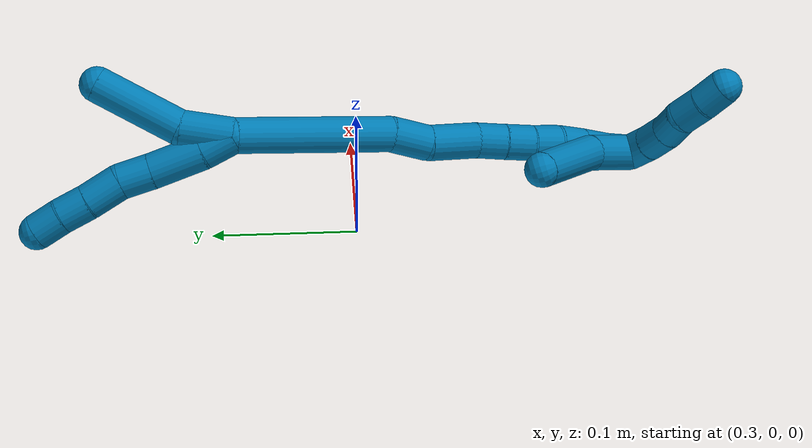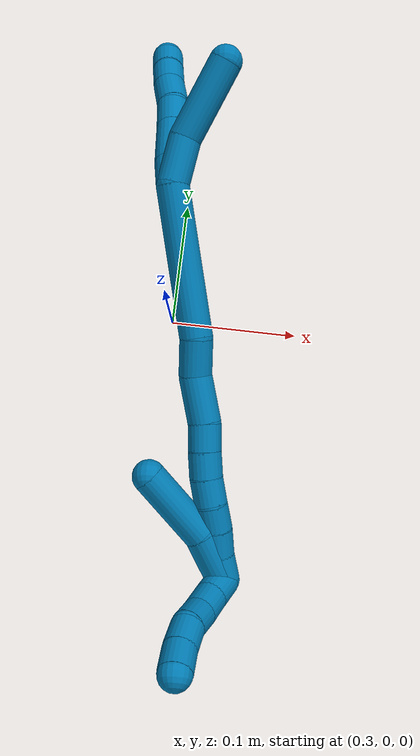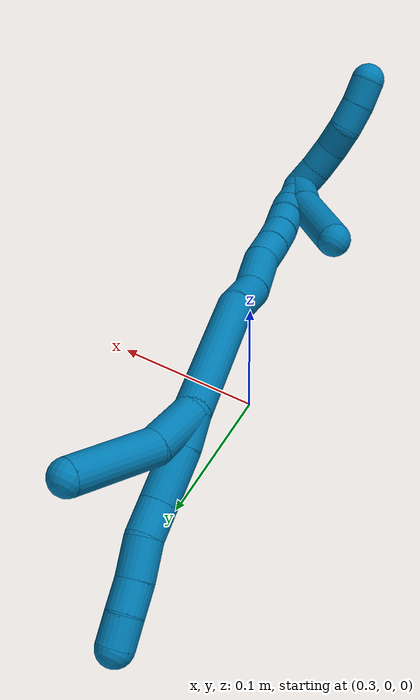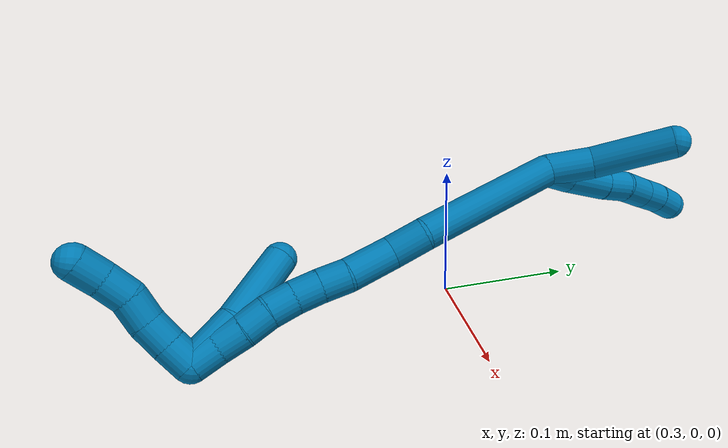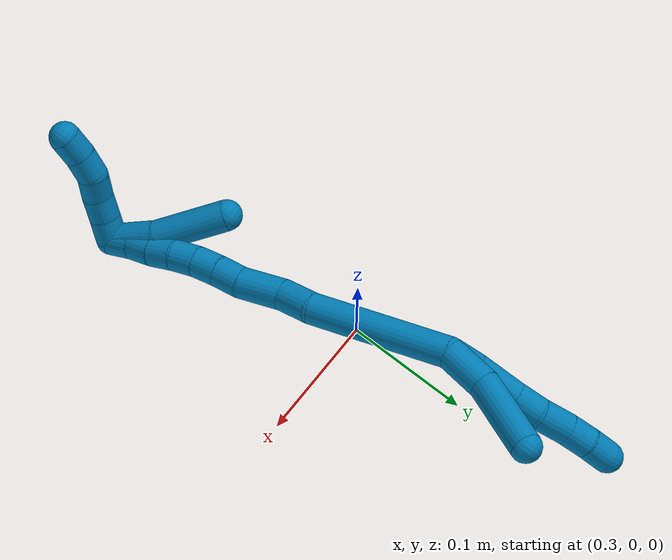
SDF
<sdf version="1.7">
 <world name="default">
  <model name="9">
   <static>0</static>
   <link name="9">
    <collision name="collision-cylinder-e_1_2_8">
     <pose>3.6e-05 -0.002047 0.011407 0.177545 0.003089 0.000275</pose>
     <geometry><cylinder><radius>0.0125</radius><length>0.023178</length></cylinder></geometry>
     <surface>
      <friction><ode><mu>1.16</mu><mu2>1.16</mu2><slip1>0</slip1><slip2>0</slip2></ode></friction>
      <contact><ode><kp>1e+06</kp><kd>1</kd><max_vel>0</max_vel><min_depth>0.001</min_depth></ode></contact>
     </surface>
    </collision>
    <visual name="visual-cylinder-e_1_2_8">
     <pose>3.6e-05 -0.002047 0.011407 0.177545 0.003089 0.000275</pose>
     <geometry><cylinder><radius>0.0125</radius><length>0.023178</length></cylinder></geometry>
     <material><ambient>0 0.490196 0.709804 1</ambient></material>
    </visual>
    <collision name="collision-cylinder-e_2_8_9">
     <pose>0.000249 -0.005083 0.041526 0.052804 0.009472 0.00025</pose>
     <geometry><cylinder><radius>0.0125</radius><length>0.037479</length></cylinder></geometry>
     <surface>
      <friction><ode><mu>1.16</mu><mu2>1.16</mu2><slip1>0</slip1><slip2>0</slip2></ode></friction>
      <contact><ode><kp>1e+06</kp><kd>1</kd><max_vel>0</max_vel><min_depth>0.001</min_depth></ode></contact>
     </surface>
    </collision>
    <visual name="visual-cylinder-e_2_8_9">
     <pose>0.000249 -0.005083 0.041526 0.052804 0.009472 0.00025</pose>
     <geometry><cylinder><radius>0.0125</radius><length>0.037479</length></cylinder></geometry>
     <material><ambient>0 0.490196 0.709804 1</ambient></material>
    </visual>
    <collision name="collision-cylinder-e_3_9_10">
     <pose>0.001416 -0.006303 0.071536 0.020457 0.087305 0.000894</pose>
     <geometry><cylinder><radius>0.0125</radius><length>0.022685</length></cylinder></geometry>
     <surface>
      <friction><ode><mu>1.16</mu><mu2>1.16</mu2><slip1>0</slip1><slip2>0</slip2></ode></friction>
      <contact><ode><kp>1e+06</kp><kd>1</kd><max_vel>0</max_vel><min_depth>0.001</min_depth></ode></contact>
     </surface>
    </collision>
    <visual name="visual-cylinder-e_3_9_10">
     <pose>0.001416 -0.006303 0.071536 0.020457 0.087305 0.000894</pose>
     <geometry><cylinder><radius>0.0125</radius><length>0.022685</length></cylinder></geometry>
     <material><ambient>0 0.490196 0.709804 1</ambient></material>
    </visual>
    <collision name="collision-cylinder-e_4_10_11">
     <pose>0.002566 -0.009783 0.095275 0.255479 0.012572 0.001615</pose>
     <geometry><cylinder><radius>0.0125</radius><length>0.025721</length></cylinder></geometry>
     <surface>
      <friction><ode><mu>1.16</mu><mu2>1.16</mu2><slip1>0</slip1><slip2>0</slip2></ode></friction>
      <contact><ode><kp>1e+06</kp><kd>1</kd><max_vel>0</max_vel><min_depth>0.001</min_depth></ode></contact>
     </surface>
    </collision>
    <visual name="visual-cylinder-e_4_10_11">
     <pose>0.002566 -0.009783 0.095275 0.255479 0.012572 0.001615</pose>
     <geometry><cylinder><radius>0.0125</radius><length>0.025721</length></cylinder></geometry>
     <material><ambient>0 0.490196 0.709804 1</ambient></material>
    </visual>
    <collision name="collision-cylinder-e_5_11_12">
     <pose>0.00259 -0.01482 0.117861 0.174359 -0.013375 -0.001169</pose>
     <geometry><cylinder><radius>0.0125</radius><length>0.020604</length></cylinder></geometry>
     <surface>
      <friction><ode><mu>1.16</mu><mu2>1.16</mu2><slip1>0</slip1><slip2>0</slip2></ode></friction>
      <contact><ode><kp>1e+06</kp><kd>1</kd><max_vel>0</max_vel><min_depth>0.001</min_depth></ode></contact>
     </surface>
    </collision>
    <visual name="visual-cylinder-e_5_11_12">
     <pose>0.00259 -0.01482 0.117861 0.174359 -0.013375 -0.001169</pose>
     <geometry><cylinder><radius>0.0125</radius><length>0.020604</length></cylinder></geometry>
     <material><ambient>0 0.490196 0.709804 1</ambient></material>
    </visual>
    <collision name="collision-cylinder-e_6_12_6">
     <pose>0.001345 -0.018929 0.137842 0.231821 -0.109128 -0.012719</pose>
     <geometry><cylinder><radius>0.0125</radius><length>0.020333</length></cylinder></geometry>
     <surface>
      <friction><ode><mu>1.16</mu><mu2>1.16</mu2><slip1>0</slip1><slip2>0</slip2></ode></friction>
      <contact><ode><kp>1e+06</kp><kd>1</kd><max_vel>0</max_vel><min_depth>0.001</min_depth></ode></contact>
     </surface>
    </collision>
    <visual name="visual-cylinder-e_6_12_6">
     <pose>0.001345 -0.018929 0.137842 0.231821 -0.109128 -0.012719</pose>
     <geometry><cylinder><radius>0.0125</radius><length>0.020333</length></cylinder></geometry>
     <material><ambient>0 0.490196 0.709804 1</ambient></material>
    </visual>
    <collision name="collision-cylinder-e_1_2_13">
     <pose>0.003447 0.007492 0.016158 -0.434153 0.191188 -0.04229</pose>
     <geometry><cylinder><radius>0.0125</radius><length>0.036281</length></cylinder></geometry>
     <surface>
      <friction><ode><mu>1.16</mu><mu2>1.16</mu2><slip1>0</slip1><slip2>0</slip2></ode></friction>
      <contact><ode><kp>1e+06</kp><kd>1</kd><max_vel>0</max_vel><min_depth>0.001</min_depth></ode></contact>
     </surface>
    </collision>
    <visual name="visual-cylinder-e_1_2_13">
     <pose>0.003447 0.007492 0.016158 -0.434153 0.191188 -0.04229</pose>
     <geometry><cylinder><radius>0.0125</radius><length>0.036281</length></cylinder></geometry>
     <material><ambient>0 0.490196 0.709804 1</ambient></material>
    </visual>
    <collision name="collision-cylinder-e_2_13_5">
     <pose>0.011637 0.03717 0.054682 -0.781363 0.149414 -0.061632</pose>
     <geometry><cylinder><radius>0.0125</radius><length>0.063719</length></cylinder></geometry>
     <surface>
      <friction><ode><mu>1.16</mu><mu2>1.16</mu2><slip1>0</slip1><slip2>0</slip2></ode></friction>
      <contact><ode><kp>1e+06</kp><kd>1</kd><max_vel>0</max_vel><min_depth>0.001</min_depth></ode></contact>
     </surface>
    </collision>
    <visual name="visual-cylinder-e_2_13_5">
     <pose>0.011637 0.03717 0.054682 -0.781363 0.149414 -0.061632</pose>
     <geometry><cylinder><radius>0.0125</radius><length>0.063719</length></cylinder></geometry>
     <material><ambient>0 0.490196 0.709804 1</ambient></material>
    </visual>
    <collision name="collision-cylinder-e_1_2_14">
     <pose>-0.029735 -0.009884 -0.048203 2.93935 -0.543571 -2.44325</pose>
     <geometry><cylinder><radius>0.0125</radius><length>0.114985</length></cylinder></geometry>
     <surface>
      <friction><ode><mu>1.16</mu><mu2>1.16</mu2><slip1>0</slip1><slip2>0</slip2></ode></friction>
      <contact><ode><kp>1e+06</kp><kd>1</kd><max_vel>0</max_vel><min_depth>0.001</min_depth></ode></contact>
     </surface>
    </collision>
    <visual name="visual-cylinder-e_1_2_14">
     <pose>-0.029735 -0.009884 -0.048203 2.93935 -0.543571 -2.44325</pose>
     <geometry><cylinder><radius>0.0125</radius><length>0.114985</length></cylinder></geometry>
     <material><ambient>0 0.490196 0.709804 1</ambient></material>
    </visual>
    <collision name="collision-cylinder-e_2_14_15">
     <pose>-0.066513 -0.025383 -0.107186 2.66129 -0.525192 -1.66389</pose>
     <geometry><cylinder><radius>0.0125</radius><length>0.028097</length></cylinder></geometry>
     <surface>
      <friction><ode><mu>1.16</mu><mu2>1.16</mu2><slip1>0</slip1><slip2>0</slip2></ode></friction>
      <contact><ode><kp>1e+06</kp><kd>1</kd><max_vel>0</max_vel><min_depth>0.001</min_depth></ode></contact>
     </surface>
    </collision>
    <visual name="visual-cylinder-e_2_14_15">
     <pose>-0.066513 -0.025383 -0.107186 2.66129 -0.525192 -1.66389</pose>
     <geometry><cylinder><radius>0.0125</radius><length>0.028097</length></cylinder></geometry>
     <material><ambient>0 0.490196 0.709804 1</ambient></material>
    </visual>
    <collision name="collision-cylinder-e_3_15_16">
     <pose>-0.083018 -0.03329 -0.133237 2.99269 -0.549726 -2.62444</pose>
     <geometry><cylinder><radius>0.0125</radius><length>0.036219</length></cylinder></geometry>
     <surface>
      <friction><ode><mu>1.16</mu><mu2>1.16</mu2><slip1>0</slip1><slip2>0</slip2></ode></friction>
      <contact><ode><kp>1e+06</kp><kd>1</kd><max_vel>0</max_vel><min_depth>0.001</min_depth></ode></contact>
     </surface>
    </collision>
    <visual name="visual-cylinder-e_3_15_16">
     <pose>-0.083018 -0.03329 -0.133237 2.99269 -0.549726 -2.62444</pose>
     <geometry><cylinder><radius>0.0125</radius><length>0.036219</length></cylinder></geometry>
     <material><ambient>0 0.490196 0.709804 1</ambient></material>
    </visual>
    <collision name="collision-cylinder-e_4_16_17">
     <pose>-0.096643 -0.038364 -0.157552 2.8431 -0.414455 -1.8999</pose>
     <geometry><cylinder><radius>0.0125</radius><length>0.020678</length></cylinder></geometry>
     <surface>
      <friction><ode><mu>1.16</mu><mu2>1.16</mu2><slip1>0</slip1><slip2>0</slip2></ode></friction>
      <contact><ode><kp>1e+06</kp><kd>1</kd><max_vel>0</max_vel><min_depth>0.001</min_depth></ode></contact>
     </surface>
    </collision>
    <visual name="visual-cylinder-e_4_16_17">
     <pose>-0.096643 -0.038364 -0.157552 2.8431 -0.414455 -1.8999</pose>
     <geometry><cylinder><radius>0.0125</radius><length>0.020678</length></cylinder></geometry>
     <material><ambient>0 0.490196 0.709804 1</ambient></material>
    </visual>
    <collision name="collision-cylinder-e_5_17_18">
     <pose>-0.105361 -0.043574 -0.175164 2.86552 -0.472799 -2.09544</pose>
     <geometry><cylinder><radius>0.0125</radius><length>0.020001</length></cylinder></geometry>
     <surface>
      <friction><ode><mu>1.16</mu><mu2>1.16</mu2><slip1>0</slip1><slip2>0</slip2></ode></friction>
      <contact><ode><kp>1e+06</kp><kd>1</kd><max_vel>0</max_vel><min_depth>0.001</min_depth></ode></contact>
     </surface>
    </collision>
    <visual name="visual-cylinder-e_5_17_18">
     <pose>-0.105361 -0.043574 -0.175164 2.86552 -0.472799 -2.09544</pose>
     <geometry><cylinder><radius>0.0125</radius><length>0.020001</length></cylinder></geometry>
     <material><ambient>0 0.490196 0.709804 1</ambient></material>
    </visual>
    <collision name="collision-cylinder-e_6_18_19">
     <pose>-0.115344 -0.047662 -0.191974 2.94275 -0.573323 -2.48899</pose>
     <geometry><cylinder><radius>0.0125</radius><length>0.020019</length></cylinder></geometry>
     <surface>
      <friction><ode><mu>1.16</mu><mu2>1.16</mu2><slip1>0</slip1><slip2>0</slip2></ode></friction>
      <contact><ode><kp>1e+06</kp><kd>1</kd><max_vel>0</max_vel><min_depth>0.001</min_depth></ode></contact>
     </surface>
    </collision>
    <visual name="visual-cylinder-e_6_18_19">
     <pose>-0.115344 -0.047662 -0.191974 2.94275 -0.573323 -2.48899</pose>
     <geometry><cylinder><radius>0.0125</radius><length>0.020019</length></cylinder></geometry>
     <material><ambient>0 0.490196 0.709804 1</ambient></material>
    </visual>
    <collision name="collision-cylinder-e_7_19_20">
     <pose>-0.127203 -0.051773 -0.207474 2.81597 -0.698323 -2.29393</pose>
     <geometry><cylinder><radius>0.0125</radius><length>0.02</length></cylinder></geometry>
     <surface>
      <friction><ode><mu>1.16</mu><mu2>1.16</mu2><slip1>0</slip1><slip2>0</slip2></ode></friction>
      <contact><ode><kp>1e+06</kp><kd>1</kd><max_vel>0</max_vel><min_depth>0.001</min_depth></ode></contact>
     </surface>
    </collision>
    <visual name="visual-cylinder-e_7_19_20">
     <pose>-0.127203 -0.051773 -0.207474 2.81597 -0.698323 -2.29393</pose>
     <geometry><cylinder><radius>0.0125</radius><length>0.02</length></cylinder></geometry>
     <material><ambient>0 0.490196 0.709804 1</ambient></material>
    </visual>
    <collision name="collision-cylinder-e_8_20_21">
     <pose>-0.139283 -0.057446 -0.222326 2.74031 -0.600442 -1.97911</pose>
     <geometry><cylinder><radius>0.0125</radius><length>0.02</length></cylinder></geometry>
     <surface>
      <friction><ode><mu>1.16</mu><mu2>1.16</mu2><slip1>0</slip1><slip2>0</slip2></ode></friction>
      <contact><ode><kp>1e+06</kp><kd>1</kd><max_vel>0</max_vel><min_depth>0.001</min_depth></ode></contact>
     </surface>
    </collision>
    <visual name="visual-cylinder-e_8_20_21">
     <pose>-0.139283 -0.057446 -0.222326 2.74031 -0.600442 -1.97911</pose>
     <geometry><cylinder><radius>0.0125</radius><length>0.02</length></cylinder></geometry>
     <material><ambient>0 0.490196 0.709804 1</ambient></material>
    </visual>
    <collision name="collision-cylinder-e_9_21_1">
     <pose>-0.151108 -0.062683 -0.237525 2.88263 -0.665545 -2.42101</pose>
     <geometry><cylinder><radius>0.0125</radius><length>0.02</length></cylinder></geometry>
     <surface>
      <friction><ode><mu>1.16</mu><mu2>1.16</mu2><slip1>0</slip1><slip2>0</slip2></ode></friction>
      <contact><ode><kp>1e+06</kp><kd>1</kd><max_vel>0</max_vel><min_depth>0.001</min_depth></ode></contact>
     </surface>
    </collision>
    <visual name="visual-cylinder-e_9_21_1">
     <pose>-0.151108 -0.062683 -0.237525 2.88263 -0.665545 -2.42101</pose>
     <geometry><cylinder><radius>0.0125</radius><length>0.02</length></cylinder></geometry>
     <material><ambient>0 0.490196 0.709804 1</ambient></material>
    </visual>
    <collision name="collision-cylinder-e_1_1_22">
     <pose>-0.141742 -0.063429 -0.232576 -0.100729 0.888841 -0.047998</pose>
     <geometry><cylinder><radius>0.0125</radius><length>0.040035</length></cylinder></geometry>
     <surface>
      <friction><ode><mu>1.16</mu><mu2>1.16</mu2><slip1>0</slip1><slip2>0</slip2></ode></friction>
      <contact><ode><kp>1e+06</kp><kd>1</kd><max_vel>0</max_vel><min_depth>0.001</min_depth></ode></contact>
     </surface>
    </collision>
    <visual name="visual-cylinder-e_1_1_22">
     <pose>-0.141742 -0.063429 -0.232576 -0.100729 0.888841 -0.047998</pose>
     <geometry><cylinder><radius>0.0125</radius><length>0.040035</length></cylinder></geometry>
     <material><ambient>0 0.490196 0.709804 1</ambient></material>
    </visual>
    <collision name="collision-cylinder-e_2_22_4">
     <pose>-0.101499 -0.067566 -0.203914 0.323779 0.968296 0.171356</pose>
     <geometry><cylinder><radius>0.0125</radius><length>0.059965</length></cylinder></geometry>
     <surface>
      <friction><ode><mu>1.16</mu><mu2>1.16</mu2><slip1>0</slip1><slip2>0</slip2></ode></friction>
      <contact><ode><kp>1e+06</kp><kd>1</kd><max_vel>0</max_vel><min_depth>0.001</min_depth></ode></contact>
     </surface>
    </collision>
    <visual name="visual-cylinder-e_2_22_4">
     <pose>-0.101499 -0.067566 -0.203914 0.323779 0.968296 0.171356</pose>
     <geometry><cylinder><radius>0.0125</radius><length>0.059965</length></cylinder></geometry>
     <material><ambient>0 0.490196 0.709804 1</ambient></material>
    </visual>
    <collision name="collision-cylinder-e_1_1_23">
     <pose>-0.150946 -0.064891 -0.252862 3.11654 0.68629 3.07149</pose>
     <geometry><cylinder><radius>0.0125</radius><length>0.02</length></cylinder></geometry>
     <surface>
      <friction><ode><mu>1.16</mu><mu2>1.16</mu2><slip1>0</slip1><slip2>0</slip2></ode></friction>
      <contact><ode><kp>1e+06</kp><kd>1</kd><max_vel>0</max_vel><min_depth>0.001</min_depth></ode></contact>
     </surface>
    </collision>
    <visual name="visual-cylinder-e_1_1_23">
     <pose>-0.150946 -0.064891 -0.252862 3.11654 0.68629 3.07149</pose>
     <geometry><cylinder><radius>0.0125</radius><length>0.02</length></cylinder></geometry>
     <material><ambient>0 0.490196 0.709804 1</ambient></material>
    </visual>
    <collision name="collision-cylinder-e_2_23_24">
     <pose>-0.138064 -0.064416 -0.268127 -3.05293 0.713573 -2.90468</pose>
     <geometry><cylinder><radius>0.0125</radius><length>0.02</length></cylinder></geometry>
     <surface>
      <friction><ode><mu>1.16</mu><mu2>1.16</mu2><slip1>0</slip1><slip2>0</slip2></ode></friction>
      <contact><ode><kp>1e+06</kp><kd>1</kd><max_vel>0</max_vel><min_depth>0.001</min_depth></ode></contact>
     </surface>
    </collision>
    <visual name="visual-cylinder-e_2_23_24">
     <pose>-0.138064 -0.064416 -0.268127 -3.05293 0.713573 -2.90468</pose>
     <geometry><cylinder><radius>0.0125</radius><length>0.02</length></cylinder></geometry>
     <material><ambient>0 0.490196 0.709804 1</ambient></material>
    </visual>
    <collision name="collision-cylinder-e_3_24_25">
     <pose>-0.124082 -0.06195 -0.282097 -2.86961 0.838486 -2.54578</pose>
     <geometry><cylinder><radius>0.0125</radius><length>0.02</length></cylinder></geometry>
     <surface>
      <friction><ode><mu>1.16</mu><mu2>1.16</mu2><slip1>0</slip1><slip2>0</slip2></ode></friction>
      <contact><ode><kp>1e+06</kp><kd>1</kd><max_vel>0</max_vel><min_depth>0.001</min_depth></ode></contact>
     </surface>
    </collision>
    <visual name="visual-cylinder-e_3_24_25">
     <pose>-0.124082 -0.06195 -0.282097 -2.86961 0.838486 -2.54578</pose>
     <geometry><cylinder><radius>0.0125</radius><length>0.02</length></cylinder></geometry>
     <material><ambient>0 0.490196 0.709804 1</ambient></material>
    </visual>
    <collision name="collision-cylinder-e_4_25_26">
     <pose>-0.111833 -0.058656 -0.297174 -2.96985 0.502129 -2.49395</pose>
     <geometry><cylinder><radius>0.0125</radius><length>0.02</length></cylinder></geometry>
     <surface>
      <friction><ode><mu>1.16</mu><mu2>1.16</mu2><slip1>0</slip1><slip2>0</slip2></ode></friction>
      <contact><ode><kp>1e+06</kp><kd>1</kd><max_vel>0</max_vel><min_depth>0.001</min_depth></ode></contact>
     </surface>
    </collision>
    <visual name="visual-cylinder-e_4_25_26">
     <pose>-0.111833 -0.058656 -0.297174 -2.96985 0.502129 -2.49395</pose>
     <geometry><cylinder><radius>0.0125</radius><length>0.02</length></cylinder></geometry>
     <material><ambient>0 0.490196 0.709804 1</ambient></material>
    </visual>
    <collision name="collision-cylinder-e_5_26_3">
     <pose>-0.103002 -0.054795 -0.314658 -2.88054 0.413501 -2.02316</pose>
     <geometry><cylinder><radius>0.0125</radius><length>0.02</length></cylinder></geometry>
     <surface>
      <friction><ode><mu>1.16</mu><mu2>1.16</mu2><slip1>0</slip1><slip2>0</slip2></ode></friction>
      <contact><ode><kp>1e+06</kp><kd>1</kd><max_vel>0</max_vel><min_depth>0.001</min_depth></ode></contact>
     </surface>
    </collision>
    <visual name="visual-cylinder-e_5_26_3">
     <pose>-0.103002 -0.054795 -0.314658 -2.88054 0.413501 -2.02316</pose>
     <geometry><cylinder><radius>0.0125</radius><length>0.02</length></cylinder></geometry>
     <material><ambient>0 0.490196 0.709804 1</ambient></material>
    </visual>
    <collision name="collision-sphere-3">
     <pose>-0.098984 -0.052431 -0.323505 0 -0 0</pose>
     <geometry><sphere><radius>0.0125</radius></sphere></geometry>
     <surface>
      <friction><ode><mu>1.16</mu><mu2>1.16</mu2><slip1>0</slip1><slip2>0</slip2></ode></friction>
      <contact><ode><kp>1e+06</kp><kd>1</kd><max_vel>0</max_vel><min_depth>0.001</min_depth></ode></contact>
     </surface>
    </collision>
    <visual name="visual-sphere-3">
     <pose>-0.098984 -0.052431 -0.323505 0 -0 0</pose>
     <geometry><sphere><radius>0.0125</radius></sphere></geometry>
     <material><ambient>0 0.490196 0.709804 1</ambient></material>
    </visual>
    <collision name="collision-sphere-26">
     <pose>-0.10702 -0.057158 -0.305811 0 -0 0</pose>
     <geometry><sphere><radius>0.0125</radius></sphere></geometry>
     <surface>
      <friction><ode><mu>1.16</mu><mu2>1.16</mu2><slip1>0</slip1><slip2>0</slip2></ode></friction>
      <contact><ode><kp>1e+06</kp><kd>1</kd><max_vel>0</max_vel><min_depth>0.001</min_depth></ode></contact>
     </surface>
    </collision>
    <visual name="visual-sphere-26">
     <pose>-0.10702 -0.057158 -0.305811 0 -0 0</pose>
     <geometry><sphere><radius>0.0125</radius></sphere></geometry>
     <material><ambient>0 0.490196 0.709804 1</ambient></material>
    </visual>
    <collision name="collision-sphere-25">
     <pose>-0.116646 -0.060154 -0.288537 0 -0 0</pose>
     <geometry><sphere><radius>0.0125</radius></sphere></geometry>
     <surface>
      <friction><ode><mu>1.16</mu><mu2>1.16</mu2><slip1>0</slip1><slip2>0</slip2></ode></friction>
      <contact><ode><kp>1e+06</kp><kd>1</kd><max_vel>0</max_vel><min_depth>0.001</min_depth></ode></contact>
     </surface>
    </collision>
    <visual name="visual-sphere-25">
     <pose>-0.116646 -0.060154 -0.288537 0 -0 0</pose>
     <geometry><sphere><radius>0.0125</radius></sphere></geometry>
     <material><ambient>0 0.490196 0.709804 1</ambient></material>
    </visual>
    <collision name="collision-sphere-24">
     <pose>-0.131518 -0.063746 -0.275657 0 -0 0</pose>
     <geometry><sphere><radius>0.0125</radius></sphere></geometry>
     <surface>
      <friction><ode><mu>1.16</mu><mu2>1.16</mu2><slip1>0</slip1><slip2>0</slip2></ode></friction>
      <contact><ode><kp>1e+06</kp><kd>1</kd><max_vel>0</max_vel><min_depth>0.001</min_depth></ode></contact>
     </surface>
    </collision>
    <visual name="visual-sphere-24">
     <pose>-0.131518 -0.063746 -0.275657 0 -0 0</pose>
     <geometry><sphere><radius>0.0125</radius></sphere></geometry>
     <material><ambient>0 0.490196 0.709804 1</ambient></material>
    </visual>
    <collision name="collision-sphere-23">
     <pose>-0.144609 -0.065085 -0.260596 0 -0 0</pose>
     <geometry><sphere><radius>0.0125</radius></sphere></geometry>
     <surface>
      <friction><ode><mu>1.16</mu><mu2>1.16</mu2><slip1>0</slip1><slip2>0</slip2></ode></friction>
      <contact><ode><kp>1e+06</kp><kd>1</kd><max_vel>0</max_vel><min_depth>0.001</min_depth></ode></contact>
     </surface>
    </collision>
    <visual name="visual-sphere-23">
     <pose>-0.144609 -0.065085 -0.260596 0 -0 0</pose>
     <geometry><sphere><radius>0.0125</radius></sphere></geometry>
     <material><ambient>0 0.490196 0.709804 1</ambient></material>
    </visual>
    <collision name="collision-sphere-4">
     <pose>-0.076795 -0.072972 -0.187806 0 -0 0</pose>
     <geometry><sphere><radius>0.0125</radius></sphere></geometry>
     <surface>
      <friction><ode><mu>1.16</mu><mu2>1.16</mu2><slip1>0</slip1><slip2>0</slip2></ode></friction>
      <contact><ode><kp>1e+06</kp><kd>1</kd><max_vel>0</max_vel><min_depth>0.001</min_depth></ode></contact>
     </surface>
    </collision>
    <visual name="visual-sphere-4">
     <pose>-0.076795 -0.072972 -0.187806 0 -0 0</pose>
     <geometry><sphere><radius>0.0125</radius></sphere></geometry>
     <material><ambient>0 0.490196 0.709804 1</ambient></material>
    </visual>
    <collision name="collision-sphere-22">
     <pose>-0.126202 -0.06216 -0.220022 0 -0 0</pose>
     <geometry><sphere><radius>0.0125</radius></sphere></geometry>
     <surface>
      <friction><ode><mu>1.16</mu><mu2>1.16</mu2><slip1>0</slip1><slip2>0</slip2></ode></friction>
      <contact><ode><kp>1e+06</kp><kd>1</kd><max_vel>0</max_vel><min_depth>0.001</min_depth></ode></contact>
     </surface>
    </collision>
    <visual name="visual-sphere-22">
     <pose>-0.126202 -0.06216 -0.220022 0 -0 0</pose>
     <geometry><sphere><radius>0.0125</radius></sphere></geometry>
     <material><ambient>0 0.490196 0.709804 1</ambient></material>
    </visual>
    <collision name="collision-sphere-1">
     <pose>-0.157283 -0.064698 -0.245129 0 -0 0</pose>
     <geometry><sphere><radius>0.0125</radius></sphere></geometry>
     <surface>
      <friction><ode><mu>1.16</mu><mu2>1.16</mu2><slip1>0</slip1><slip2>0</slip2></ode></friction>
      <contact><ode><kp>1e+06</kp><kd>1</kd><max_vel>0</max_vel><min_depth>0.001</min_depth></ode></contact>
     </surface>
    </collision>
    <visual name="visual-sphere-1">
     <pose>-0.157283 -0.064698 -0.245129 0 -0 0</pose>
     <geometry><sphere><radius>0.0125</radius></sphere></geometry>
     <material><ambient>0 0.490196 0.709804 1</ambient></material>
    </visual>
    <collision name="collision-sphere-21">
     <pose>-0.144933 -0.060669 -0.229922 0 -0 0</pose>
     <geometry><sphere><radius>0.0125</radius></sphere></geometry>
     <surface>
      <friction><ode><mu>1.16</mu><mu2>1.16</mu2><slip1>0</slip1><slip2>0</slip2></ode></friction>
      <contact><ode><kp>1e+06</kp><kd>1</kd><max_vel>0</max_vel><min_depth>0.001</min_depth></ode></contact>
     </surface>
    </collision>
    <visual name="visual-sphere-21">
     <pose>-0.144933 -0.060669 -0.229922 0 -0 0</pose>
     <geometry><sphere><radius>0.0125</radius></sphere></geometry>
     <material><ambient>0 0.490196 0.709804 1</ambient></material>
    </visual>
    <collision name="collision-sphere-12">
     <pose>0.002452 -0.016607 0.128006 0 -0 0</pose>
     <geometry><sphere><radius>0.0125</radius></sphere></geometry>
     <surface>
      <friction><ode><mu>1.16</mu><mu2>1.16</mu2><slip1>0</slip1><slip2>0</slip2></ode></friction>
      <contact><ode><kp>1e+06</kp><kd>1</kd><max_vel>0</max_vel><min_depth>0.001</min_depth></ode></contact>
     </surface>
    </collision>
    <visual name="visual-sphere-12">
     <pose>0.002452 -0.016607 0.128006 0 -0 0</pose>
     <geometry><sphere><radius>0.0125</radius></sphere></geometry>
     <material><ambient>0 0.490196 0.709804 1</ambient></material>
    </visual>
    <collision name="collision-sphere-11">
     <pose>0.002728 -0.013033 0.107716 0 -0 0</pose>
     <geometry><sphere><radius>0.0125</radius></sphere></geometry>
     <surface>
      <friction><ode><mu>1.16</mu><mu2>1.16</mu2><slip1>0</slip1><slip2>0</slip2></ode></friction>
      <contact><ode><kp>1e+06</kp><kd>1</kd><max_vel>0</max_vel><min_depth>0.001</min_depth></ode></contact>
     </surface>
    </collision>
    <visual name="visual-sphere-11">
     <pose>0.002728 -0.013033 0.107716 0 -0 0</pose>
     <geometry><sphere><radius>0.0125</radius></sphere></geometry>
     <material><ambient>0 0.490196 0.709804 1</ambient></material>
    </visual>
    <collision name="collision-sphere-10">
     <pose>0.002405 -0.006534 0.082833 0 -0 0</pose>
     <geometry><sphere><radius>0.0125</radius></sphere></geometry>
     <surface>
      <friction><ode><mu>1.16</mu><mu2>1.16</mu2><slip1>0</slip1><slip2>0</slip2></ode></friction>
      <contact><ode><kp>1e+06</kp><kd>1</kd><max_vel>0</max_vel><min_depth>0.001</min_depth></ode></contact>
     </surface>
    </collision>
    <visual name="visual-sphere-10">
     <pose>0.002405 -0.006534 0.082833 0 -0 0</pose>
     <geometry><sphere><radius>0.0125</radius></sphere></geometry>
     <material><ambient>0 0.490196 0.709804 1</ambient></material>
    </visual>
    <collision name="collision-sphere-9">
     <pose>0.000427 -0.006072 0.060238 0 -0 0</pose>
     <geometry><sphere><radius>0.0125</radius></sphere></geometry>
     <surface>
      <friction><ode><mu>1.16</mu><mu2>1.16</mu2><slip1>0</slip1><slip2>0</slip2></ode></friction>
      <contact><ode><kp>1e+06</kp><kd>1</kd><max_vel>0</max_vel><min_depth>0.001</min_depth></ode></contact>
     </surface>
    </collision>
    <visual name="visual-sphere-9">
     <pose>0.000427 -0.006072 0.060238 0 -0 0</pose>
     <geometry><sphere><radius>0.0125</radius></sphere></geometry>
     <material><ambient>0 0.490196 0.709804 1</ambient></material>
    </visual>
    <collision name="collision-sphere-2">
     <geometry><sphere><radius>0.0125</radius></sphere></geometry>
     <surface>
      <friction><ode><mu>1.16</mu><mu2>1.16</mu2><slip1>0</slip1><slip2>0</slip2></ode></friction>
      <contact><ode><kp>1e+06</kp><kd>1</kd><max_vel>0</max_vel><min_depth>0.001</min_depth></ode></contact>
     </surface>
    </collision>
    <visual name="visual-sphere-2">
     <geometry><sphere><radius>0.0125</radius></sphere></geometry>
     <material><ambient>0 0.490196 0.709804 1</ambient></material>
    </visual>
    <collision name="collision-sphere-19">
     <pose>-0.120774 -0.049323 -0.200217 0 -0 0</pose>
     <geometry><sphere><radius>0.0125</radius></sphere></geometry>
     <surface>
      <friction><ode><mu>1.16</mu><mu2>1.16</mu2><slip1>0</slip1><slip2>0</slip2></ode></friction>
      <contact><ode><kp>1e+06</kp><kd>1</kd><max_vel>0</max_vel><min_depth>0.001</min_depth></ode></contact>
     </surface>
    </collision>
    <visual name="visual-sphere-19">
     <pose>-0.120774 -0.049323 -0.200217 0 -0 0</pose>
     <geometry><sphere><radius>0.0125</radius></sphere></geometry>
     <material><ambient>0 0.490196 0.709804 1</ambient></material>
    </visual>
    <collision name="collision-sphere-8">
     <pose>7.2e-05 -0.004094 0.022813 0 -0 0</pose>
     <geometry><sphere><radius>0.0125</radius></sphere></geometry>
     <surface>
      <friction><ode><mu>1.16</mu><mu2>1.16</mu2><slip1>0</slip1><slip2>0</slip2></ode></friction>
      <contact><ode><kp>1e+06</kp><kd>1</kd><max_vel>0</max_vel><min_depth>0.001</min_depth></ode></contact>
     </surface>
    </collision>
    <visual name="visual-sphere-8">
     <pose>7.2e-05 -0.004094 0.022813 0 -0 0</pose>
     <geometry><sphere><radius>0.0125</radius></sphere></geometry>
     <material><ambient>0 0.490196 0.709804 1</ambient></material>
    </visual>
    <collision name="collision-sphere-6">
     <pose>0.000238 -0.021251 0.147678 0 -0 0</pose>
     <geometry><sphere><radius>0.0125</radius></sphere></geometry>
     <surface>
      <friction><ode><mu>1.16</mu><mu2>1.16</mu2><slip1>0</slip1><slip2>0</slip2></ode></friction>
      <contact><ode><kp>1e+06</kp><kd>1</kd><max_vel>0</max_vel><min_depth>0.001</min_depth></ode></contact>
     </surface>
    </collision>
    <visual name="visual-sphere-6">
     <pose>0.000238 -0.021251 0.147678 0 -0 0</pose>
     <geometry><sphere><radius>0.0125</radius></sphere></geometry>
     <material><ambient>0 0.490196 0.709804 1</ambient></material>
    </visual>
    <collision name="collision-sphere-13">
     <pose>0.006894 0.014983 0.032315 0 -0 0</pose>
     <geometry><sphere><radius>0.0125</radius></sphere></geometry>
     <surface>
      <friction><ode><mu>1.16</mu><mu2>1.16</mu2><slip1>0</slip1><slip2>0</slip2></ode></friction>
      <contact><ode><kp>1e+06</kp><kd>1</kd><max_vel>0</max_vel><min_depth>0.001</min_depth></ode></contact>
     </surface>
    </collision>
    <visual name="visual-sphere-13">
     <pose>0.006894 0.014983 0.032315 0 -0 0</pose>
     <geometry><sphere><radius>0.0125</radius></sphere></geometry>
     <material><ambient>0 0.490196 0.709804 1</ambient></material>
    </visual>
    <collision name="collision-sphere-5">
     <pose>0.016379 0.059357 0.077049 0 -0 0</pose>
     <geometry><sphere><radius>0.0125</radius></sphere></geometry>
     <surface>
      <friction><ode><mu>1.16</mu><mu2>1.16</mu2><slip1>0</slip1><slip2>0</slip2></ode></friction>
      <contact><ode><kp>1e+06</kp><kd>1</kd><max_vel>0</max_vel><min_depth>0.001</min_depth></ode></contact>
     </surface>
    </collision>
    <visual name="visual-sphere-5">
     <pose>0.016379 0.059357 0.077049 0 -0 0</pose>
     <geometry><sphere><radius>0.0125</radius></sphere></geometry>
     <material><ambient>0 0.490196 0.709804 1</ambient></material>
    </visual>
    <collision name="collision-sphere-14">
     <pose>-0.05947 -0.019767 -0.096406 0 -0 0</pose>
     <geometry><sphere><radius>0.0125</radius></sphere></geometry>
     <surface>
      <friction><ode><mu>1.16</mu><mu2>1.16</mu2><slip1>0</slip1><slip2>0</slip2></ode></friction>
      <contact><ode><kp>1e+06</kp><kd>1</kd><max_vel>0</max_vel><min_depth>0.001</min_depth></ode></contact>
     </surface>
    </collision>
    <visual name="visual-sphere-14">
     <pose>-0.05947 -0.019767 -0.096406 0 -0 0</pose>
     <geometry><sphere><radius>0.0125</radius></sphere></geometry>
     <material><ambient>0 0.490196 0.709804 1</ambient></material>
    </visual>
    <collision name="collision-sphere-15">
     <pose>-0.073557 -0.031 -0.117966 0 -0 0</pose>
     <geometry><sphere><radius>0.0125</radius></sphere></geometry>
     <surface>
      <friction><ode><mu>1.16</mu><mu2>1.16</mu2><slip1>0</slip1><slip2>0</slip2></ode></friction>
      <contact><ode><kp>1e+06</kp><kd>1</kd><max_vel>0</max_vel><min_depth>0.001</min_depth></ode></contact>
     </surface>
    </collision>
    <visual name="visual-sphere-15">
     <pose>-0.073557 -0.031 -0.117966 0 -0 0</pose>
     <geometry><sphere><radius>0.0125</radius></sphere></geometry>
     <material><ambient>0 0.490196 0.709804 1</ambient></material>
    </visual>
    <collision name="collision-sphere-16">
     <pose>-0.09248 -0.035581 -0.148507 0 -0 0</pose>
     <geometry><sphere><radius>0.0125</radius></sphere></geometry>
     <surface>
      <friction><ode><mu>1.16</mu><mu2>1.16</mu2><slip1>0</slip1><slip2>0</slip2></ode></friction>
      <contact><ode><kp>1e+06</kp><kd>1</kd><max_vel>0</max_vel><min_depth>0.001</min_depth></ode></contact>
     </surface>
    </collision>
    <visual name="visual-sphere-16">
     <pose>-0.09248 -0.035581 -0.148507 0 -0 0</pose>
     <geometry><sphere><radius>0.0125</radius></sphere></geometry>
     <material><ambient>0 0.490196 0.709804 1</ambient></material>
    </visual>
    <collision name="collision-sphere-17">
     <pose>-0.100807 -0.041147 -0.166598 0 -0 0</pose>
     <geometry><sphere><radius>0.0125</radius></sphere></geometry>
     <surface>
      <friction><ode><mu>1.16</mu><mu2>1.16</mu2><slip1>0</slip1><slip2>0</slip2></ode></friction>
      <contact><ode><kp>1e+06</kp><kd>1</kd><max_vel>0</max_vel><min_depth>0.001</min_depth></ode></contact>
     </surface>
    </collision>
    <visual name="visual-sphere-17">
     <pose>-0.100807 -0.041147 -0.166598 0 -0 0</pose>
     <geometry><sphere><radius>0.0125</radius></sphere></geometry>
     <material><ambient>0 0.490196 0.709804 1</ambient></material>
    </visual>
    <collision name="collision-sphere-18">
     <pose>-0.109915 -0.046001 -0.18373 0 -0 0</pose>
     <geometry><sphere><radius>0.0125</radius></sphere></geometry>
     <surface>
      <friction><ode><mu>1.16</mu><mu2>1.16</mu2><slip1>0</slip1><slip2>0</slip2></ode></friction>
      <contact><ode><kp>1e+06</kp><kd>1</kd><max_vel>0</max_vel><min_depth>0.001</min_depth></ode></contact>
     </surface>
    </collision>
    <visual name="visual-sphere-18">
     <pose>-0.109915 -0.046001 -0.18373 0 -0 0</pose>
     <geometry><sphere><radius>0.0125</radius></sphere></geometry>
     <material><ambient>0 0.490196 0.709804 1</ambient></material>
    </visual>
    <collision name="collision-sphere-20">
     <pose>-0.133633 -0.054224 -0.214731 0 -0 0</pose>
     <geometry><sphere><radius>0.0125</radius></sphere></geometry>
     <surface>
      <friction><ode><mu>1.16</mu><mu2>1.16</mu2><slip1>0</slip1><slip2>0</slip2></ode></friction>
      <contact><ode><kp>1e+06</kp><kd>1</kd><max_vel>0</max_vel><min_depth>0.001</min_depth></ode></contact>
     </surface>
    </collision>
    <visual name="visual-sphere-20">
     <pose>-0.133633 -0.054224 -0.214731 0 -0 0</pose>
     <geometry><sphere><radius>0.0125</radius></sphere></geometry>
     <material><ambient>0 0.490196 0.709804 1</ambient></material>
    </visual>
    <inertial>
     <pose>-0.061767 -0.027307 -0.095963 0 -0 0</pose>
     <mass>0.75</mass>
     <inertia>
      <ixx>-0.000125</ixx>
      <ixy>0</ixy>
      <ixz>0</ixz>
      <iyy>0.000102</iyy>
      <iyz>0</iyz>
      <izz>5.4e-05</izz>
     </inertia>
    </inertial>
   </link>
   <pose>0.294993 0.083373 0.091031 2.03739 -0.814909 2.85008</pose>
  </model>
 </world>
</sdf>
